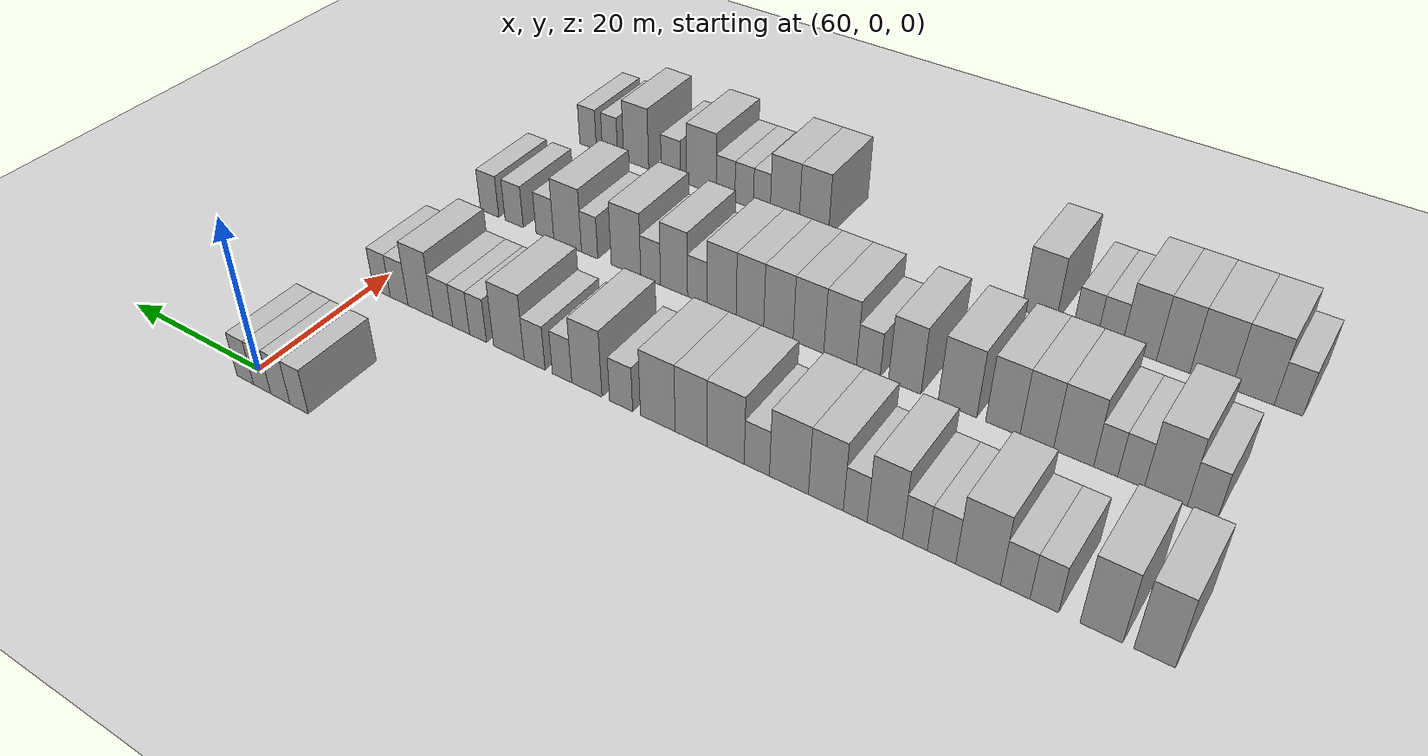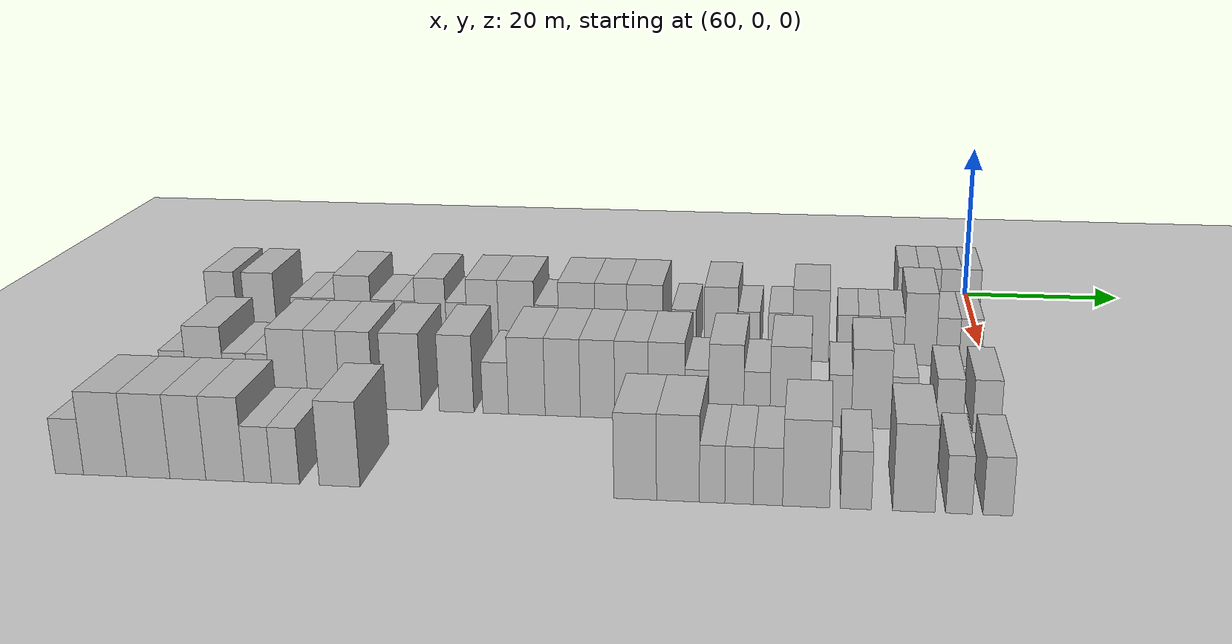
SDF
<sdf version="1.6">
 <world name="default">
  <include>
   <name>ground_plane_2</name>
   <uri>model://HANNAS_ground_plane</uri>
   <pose>100 0 0  0 0 0</pose>
  </include>
  <model name="building_412">
   <static>1</static>
   <pose>63.0000 -8.2367 0 0.000000 0.000000 0.000000</pose>
   <link name="link">
    <pose>0 0 3.00 0 0 0</pose>
    <collision name="collision"><geometry><box><size>10.0000 2.6798 6.0000</size></box></geometry></collision>
    <visual name="visual">
     <cast_shadows>0</cast_shadows>
     <geometry><box><size>10.0000 2.6798 6.0000</size></box></geometry>
     <material>
      <script>
       <uri>model://HANNAS_wall/materials/scripts</uri>
       <uri>model://HANNAS_wall/materials/textures</uri>
       <name>vrc/HANNAS_wall</name>
      </script>
     </material>
    </visual>
   </link>
  </model>
  <model name="building_413">
   <static>1</static>
   <pose>63.0000 -5.4580 0 0.000000 0.000000 0.000000</pose>
   <link name="link">
    <pose>0 0 3.00 0 0 0</pose>
    <collision name="collision"><geometry><box><size>10.0000 2.8775 6.0000</size></box></geometry></collision>
    <visual name="visual">
     <cast_shadows>0</cast_shadows>
     <geometry><box><size>10.0000 2.8775 6.0000</size></box></geometry>
     <material>
      <script>
       <uri>model://HANNAS_wall/materials/scripts</uri>
       <uri>model://HANNAS_wall/materials/textures</uri>
       <name>vrc/HANNAS_wall</name>
      </script>
     </material>
    </visual>
   </link>
  </model>
  <model name="building_414">
   <static>1</static>
   <pose>63.0000 -2.7112 0 0.000000 0.000000 0.000000</pose>
   <link name="link">
    <pose>0 0 3.00 0 0 0</pose>
    <collision name="collision"><geometry><box><size>10.0000 2.6161 6.0000</size></box></geometry></collision>
    <visual name="visual">
     <cast_shadows>0</cast_shadows>
     <geometry><box><size>10.0000 2.6161 6.0000</size></box></geometry>
     <material>
      <script>
       <uri>model://HANNAS_wall/materials/scripts</uri>
       <uri>model://HANNAS_wall/materials/textures</uri>
       <name>vrc/HANNAS_wall</name>
      </script>
     </material>
    </visual>
   </link>
  </model>
  <model name="building_415">
   <static>1</static>
   <pose>63.0000 -0.1219 0 0.000000 0.000000 0.000000</pose>
   <link name="link">
    <pose>0 0 3.00 0 0 0</pose>
    <collision name="collision"><geometry><box><size>10.0000 2.5626 6.0000</size></box></geometry></collision>
    <visual name="visual">
     <cast_shadows>0</cast_shadows>
     <geometry><box><size>10.0000 2.5626 6.0000</size></box></geometry>
     <material>
      <script>
       <uri>model://HANNAS_wall/materials/scripts</uri>
       <uri>model://HANNAS_wall/materials/textures</uri>
       <name>vrc/HANNAS_wall</name>
      </script>
     </material>
    </visual>
   </link>
  </model>
  <model name="building_560">
   <static>1</static>
   <pose>82.0000 -93.1378 0 0.000000 0.000000 0.000000</pose>
   <link name="link">
    <pose>0 0 4.50 0 0 0</pose>
    <collision name="collision"><geometry><box><size>10.0000 3.7165 9.0000</size></box></geometry></collision>
    <visual name="visual">
     <cast_shadows>0</cast_shadows>
     <geometry><box><size>10.0000 3.7165 9.0000</size></box></geometry>
     <material>
      <script>
       <uri>model://HANNAS_wall/materials/scripts</uri>
       <uri>model://HANNAS_wall/materials/textures</uri>
       <name>vrc/HANNAS_wall</name>
      </script>
     </material>
    </visual>
   </link>
  </model>
  <model name="building_561">
   <static>1</static>
   <pose>82.0000 -88.3044 0 0.000000 0.000000 0.000000</pose>
   <link name="link">
    <pose>0 0 4.50 0 0 0</pose>
    <collision name="collision"><geometry><box><size>10.0000 3.9504 9.0000</size></box></geometry></collision>
    <visual name="visual">
     <cast_shadows>0</cast_shadows>
     <geometry><box><size>10.0000 3.9504 9.0000</size></box></geometry>
     <material>
      <script>
       <uri>model://HANNAS_wall/materials/scripts</uri>
       <uri>model://HANNAS_wall/materials/textures</uri>
       <name>vrc/HANNAS_wall</name>
      </script>
     </material>
    </visual>
   </link>
  </model>
  <model name="building_562">
   <static>1</static>
   <pose>82.0000 -82.9565 0 0.000000 0.000000 0.000000</pose>
   <link name="link">
    <pose>0 0 3.00 0 0 0</pose>
    <collision name="collision"><geometry><box><size>10.0000 2.7454 6.0000</size></box></geometry></collision>
    <visual name="visual">
     <cast_shadows>0</cast_shadows>
     <geometry><box><size>10.0000 2.7454 6.0000</size></box></geometry>
     <material>
      <script>
       <uri>model://HANNAS_wall/materials/scripts</uri>
       <uri>model://HANNAS_wall/materials/textures</uri>
       <name>vrc/HANNAS_wall</name>
      </script>
     </material>
    </visual>
   </link>
  </model>
  <model name="building_563">
   <static>1</static>
   <pose>82.0000 -80.1450 0 0.000000 0.000000 0.000000</pose>
   <link name="link">
    <pose>0 0 3.00 0 0 0</pose>
    <collision name="collision"><geometry><box><size>10.0000 2.8777 6.0000</size></box></geometry></collision>
    <visual name="visual">
     <cast_shadows>0</cast_shadows>
     <geometry><box><size>10.0000 2.8777 6.0000</size></box></geometry>
     <material>
      <script>
       <uri>model://HANNAS_wall/materials/scripts</uri>
       <uri>model://HANNAS_wall/materials/textures</uri>
       <name>vrc/HANNAS_wall</name>
      </script>
     </material>
    </visual>
   </link>
  </model>
  <model name="building_564">
   <static>1</static>
   <pose>82.0000 -76.4679 0 0.000000 0.000000 0.000000</pose>
   <link name="link">
    <pose>0 0 4.50 0 0 0</pose>
    <collision name="collision"><geometry><box><size>10.0000 4.4765 9.0000</size></box></geometry></collision>
    <visual name="visual">
     <cast_shadows>0</cast_shadows>
     <geometry><box><size>10.0000 4.4765 9.0000</size></box></geometry>
     <material>
      <script>
       <uri>model://HANNAS_wall/materials/scripts</uri>
       <uri>model://HANNAS_wall/materials/textures</uri>
       <name>vrc/HANNAS_wall</name>
      </script>
     </material>
    </visual>
   </link>
  </model>
  <model name="building_565">
   <static>1</static>
   <pose>82.0000 -72.7748 0 0.000000 0.000000 0.000000</pose>
   <link name="link">
    <pose>0 0 3.00 0 0 0</pose>
    <collision name="collision"><geometry><box><size>10.0000 2.9097 6.0000</size></box></geometry></collision>
    <visual name="visual">
     <cast_shadows>0</cast_shadows>
     <geometry><box><size>10.0000 2.9097 6.0000</size></box></geometry>
     <material>
      <script>
       <uri>model://HANNAS_wall/materials/scripts</uri>
       <uri>model://HANNAS_wall/materials/textures</uri>
       <name>vrc/HANNAS_wall</name>
      </script>
     </material>
    </visual>
   </link>
  </model>
  <model name="building_566">
   <static>1</static>
   <pose>82.0000 -70.0267 0 0.000000 0.000000 0.000000</pose>
   <link name="link">
    <pose>0 0 3.00 0 0 0</pose>
    <collision name="collision"><geometry><box><size>10.0000 2.5865 6.0000</size></box></geometry></collision>
    <visual name="visual">
     <cast_shadows>0</cast_shadows>
     <geometry><box><size>10.0000 2.5865 6.0000</size></box></geometry>
     <material>
      <script>
       <uri>model://HANNAS_wall/materials/scripts</uri>
       <uri>model://HANNAS_wall/materials/textures</uri>
       <name>vrc/HANNAS_wall</name>
      </script>
     </material>
    </visual>
   </link>
  </model>
  <model name="building_567">
   <static>1</static>
   <pose>82.0000 -66.8408 0 0.000000 0.000000 0.000000</pose>
   <link name="link">
    <pose>0 0 4.50 0 0 0</pose>
    <collision name="collision"><geometry><box><size>10.0000 3.7851 9.0000</size></box></geometry></collision>
    <visual name="visual">
     <cast_shadows>0</cast_shadows>
     <geometry><box><size>10.0000 3.7851 9.0000</size></box></geometry>
     <material>
      <script>
       <uri>model://HANNAS_wall/materials/scripts</uri>
       <uri>model://HANNAS_wall/materials/textures</uri>
       <name>vrc/HANNAS_wall</name>
      </script>
     </material>
    </visual>
   </link>
  </model>
  <model name="building_568">
   <static>1</static>
   <pose>82.0000 -63.6502 0 0.000000 0.000000 0.000000</pose>
   <link name="link">
    <pose>0 0 3.00 0 0 0</pose>
    <collision name="collision"><geometry><box><size>10.0000 2.5962 6.0000</size></box></geometry></collision>
    <visual name="visual">
     <cast_shadows>0</cast_shadows>
     <geometry><box><size>10.0000 2.5962 6.0000</size></box></geometry>
     <material>
      <script>
       <uri>model://HANNAS_wall/materials/scripts</uri>
       <uri>model://HANNAS_wall/materials/textures</uri>
       <name>vrc/HANNAS_wall</name>
      </script>
     </material>
    </visual>
   </link>
  </model>
  <model name="building_569">
   <static>1</static>
   <pose>82.0000 -60.4070 0 0.000000 0.000000 0.000000</pose>
   <link name="link">
    <pose>0 0 4.50 0 0 0</pose>
    <collision name="collision"><geometry><box><size>10.0000 3.8902 9.0000</size></box></geometry></collision>
    <visual name="visual">
     <cast_shadows>0</cast_shadows>
     <geometry><box><size>10.0000 3.8902 9.0000</size></box></geometry>
     <material>
      <script>
       <uri>model://HANNAS_wall/materials/scripts</uri>
       <uri>model://HANNAS_wall/materials/textures</uri>
       <name>vrc/HANNAS_wall</name>
      </script>
     </material>
    </visual>
   </link>
  </model>
  <model name="building_570">
   <static>1</static>
   <pose>82.0000 -56.2359 0 0.000000 0.000000 0.000000</pose>
   <link name="link">
    <pose>0 0 4.50 0 0 0</pose>
    <collision name="collision"><geometry><box><size>10.0000 4.4520 9.0000</size></box></geometry></collision>
    <visual name="visual">
     <cast_shadows>0</cast_shadows>
     <geometry><box><size>10.0000 4.4520 9.0000</size></box></geometry>
     <material>
      <script>
       <uri>model://HANNAS_wall/materials/scripts</uri>
       <uri>model://HANNAS_wall/materials/textures</uri>
       <name>vrc/HANNAS_wall</name>
      </script>
     </material>
    </visual>
   </link>
  </model>
  <model name="building_571">
   <static>1</static>
   <pose>82.0000 -52.5347 0 0.000000 0.000000 0.000000</pose>
   <link name="link">
    <pose>0 0 3.00 0 0 0</pose>
    <collision name="collision"><geometry><box><size>10.0000 2.9504 6.0000</size></box></geometry></collision>
    <visual name="visual">
     <cast_shadows>0</cast_shadows>
     <geometry><box><size>10.0000 2.9504 6.0000</size></box></geometry>
     <material>
      <script>
       <uri>model://HANNAS_wall/materials/scripts</uri>
       <uri>model://HANNAS_wall/materials/textures</uri>
       <name>vrc/HANNAS_wall</name>
      </script>
     </material>
    </visual>
   </link>
  </model>
  <model name="building_572">
   <static>1</static>
   <pose>82.0000 -48.8344 0 0.000000 0.000000 0.000000</pose>
   <link name="link">
    <pose>0 0 4.50 0 0 0</pose>
    <collision name="collision"><geometry><box><size>10.0000 4.4501 9.0000</size></box></geometry></collision>
    <visual name="visual">
     <cast_shadows>0</cast_shadows>
     <geometry><box><size>10.0000 4.4501 9.0000</size></box></geometry>
     <material>
      <script>
       <uri>model://HANNAS_wall/materials/scripts</uri>
       <uri>model://HANNAS_wall/materials/textures</uri>
       <name>vrc/HANNAS_wall</name>
      </script>
     </material>
    </visual>
   </link>
  </model>
  <model name="building_573">
   <static>1</static>
   <pose>82.0000 -44.6592 0 0.000000 0.000000 0.000000</pose>
   <link name="link">
    <pose>0 0 4.50 0 0 0</pose>
    <collision name="collision"><geometry><box><size>10.0000 3.9004 9.0000</size></box></geometry></collision>
    <visual name="visual">
     <cast_shadows>0</cast_shadows>
     <geometry><box><size>10.0000 3.9004 9.0000</size></box></geometry>
     <material>
      <script>
       <uri>model://HANNAS_wall/materials/scripts</uri>
       <uri>model://HANNAS_wall/materials/textures</uri>
       <name>vrc/HANNAS_wall</name>
      </script>
     </material>
    </visual>
   </link>
  </model>
  <model name="building_574">
   <static>1</static>
   <pose>82.0000 -40.5272 0 0.000000 0.000000 0.000000</pose>
   <link name="link">
    <pose>0 0 4.50 0 0 0</pose>
    <collision name="collision"><geometry><box><size>10.0000 4.3636 9.0000</size></box></geometry></collision>
    <visual name="visual">
     <cast_shadows>0</cast_shadows>
     <geometry><box><size>10.0000 4.3636 9.0000</size></box></geometry>
     <material>
      <script>
       <uri>model://HANNAS_wall/materials/scripts</uri>
       <uri>model://HANNAS_wall/materials/textures</uri>
       <name>vrc/HANNAS_wall</name>
      </script>
     </material>
    </visual>
   </link>
  </model>
  <model name="building_575">
   <static>1</static>
   <pose>82.0000 -35.8526 0 0.000000 0.000000 0.000000</pose>
   <link name="link">
    <pose>0 0 3.00 0 0 0</pose>
    <collision name="collision"><geometry><box><size>10.0000 2.9856 6.0000</size></box></geometry></collision>
    <visual name="visual">
     <cast_shadows>0</cast_shadows>
     <geometry><box><size>10.0000 2.9856 6.0000</size></box></geometry>
     <material>
      <script>
       <uri>model://HANNAS_wall/materials/scripts</uri>
       <uri>model://HANNAS_wall/materials/textures</uri>
       <name>vrc/HANNAS_wall</name>
      </script>
     </material>
    </visual>
   </link>
  </model>
  <model name="building_576">
   <static>1</static>
   <pose>82.0000 -31.3564 0 0.000000 0.000000 0.000000</pose>
   <link name="link">
    <pose>0 0 4.50 0 0 0</pose>
    <collision name="collision"><geometry><box><size>10.0000 4.0068 9.0000</size></box></geometry></collision>
    <visual name="visual">
     <cast_shadows>0</cast_shadows>
     <geometry><box><size>10.0000 4.0068 9.0000</size></box></geometry>
     <material>
      <script>
       <uri>model://HANNAS_wall/materials/scripts</uri>
       <uri>model://HANNAS_wall/materials/textures</uri>
       <name>vrc/HANNAS_wall</name>
      </script>
     </material>
    </visual>
   </link>
  </model>
  <model name="building_577">
   <static>1</static>
   <pose>82.0000 -28.0346 0 0.000000 0.000000 0.000000</pose>
   <link name="link">
    <pose>0 0 3.00 0 0 0</pose>
    <collision name="collision"><geometry><box><size>10.0000 2.6367 6.0000</size></box></geometry></collision>
    <visual name="visual">
     <cast_shadows>0</cast_shadows>
     <geometry><box><size>10.0000 2.6367 6.0000</size></box></geometry>
     <material>
      <script>
       <uri>model://HANNAS_wall/materials/scripts</uri>
       <uri>model://HANNAS_wall/materials/textures</uri>
       <name>vrc/HANNAS_wall</name>
      </script>
     </material>
    </visual>
   </link>
  </model>
  <model name="building_578">
   <static>1</static>
   <pose>82.0000 -24.2672 0 0.000000 0.000000 0.000000</pose>
   <link name="link">
    <pose>0 0 3.00 0 0 0</pose>
    <collision name="collision"><geometry><box><size>10.0000 2.8980 6.0000</size></box></geometry></collision>
    <visual name="visual">
     <cast_shadows>0</cast_shadows>
     <geometry><box><size>10.0000 2.8980 6.0000</size></box></geometry>
     <material>
      <script>
       <uri>model://HANNAS_wall/materials/scripts</uri>
       <uri>model://HANNAS_wall/materials/textures</uri>
       <name>vrc/HANNAS_wall</name>
      </script>
     </material>
    </visual>
   </link>
  </model>
  <model name="building_579">
   <static>1</static>
   <pose>82.0000 -20.6500 0 0.000000 0.000000 0.000000</pose>
   <link name="link">
    <pose>0 0 4.50 0 0 0</pose>
    <collision name="collision"><geometry><box><size>10.0000 4.3365 9.0000</size></box></geometry></collision>
    <visual name="visual">
     <cast_shadows>0</cast_shadows>
     <geometry><box><size>10.0000 4.3365 9.0000</size></box></geometry>
     <material>
      <script>
       <uri>model://HANNAS_wall/materials/scripts</uri>
       <uri>model://HANNAS_wall/materials/textures</uri>
       <name>vrc/HANNAS_wall</name>
      </script>
     </material>
    </visual>
   </link>
  </model>
  <model name="building_580">
   <static>1</static>
   <pose>82.0000 -16.2533 0 0.000000 0.000000 0.000000</pose>
   <link name="link">
    <pose>0 0 3.00 0 0 0</pose>
    <collision name="collision"><geometry><box><size>10.0000 2.4568 6.0000</size></box></geometry></collision>
    <visual name="visual">
     <cast_shadows>0</cast_shadows>
     <geometry><box><size>10.0000 2.4568 6.0000</size></box></geometry>
     <material>
      <script>
       <uri>model://HANNAS_wall/materials/scripts</uri>
       <uri>model://HANNAS_wall/materials/textures</uri>
       <name>vrc/HANNAS_wall</name>
      </script>
     </material>
    </visual>
   </link>
  </model>
  <model name="building_581">
   <static>1</static>
   <pose>82.0000 -13.7744 0 0.000000 0.000000 0.000000</pose>
   <link name="link">
    <pose>0 0 3.00 0 0 0</pose>
    <collision name="collision"><geometry><box><size>10.0000 2.5010 6.0000</size></box></geometry></collision>
    <visual name="visual">
     <cast_shadows>0</cast_shadows>
     <geometry><box><size>10.0000 2.5010 6.0000</size></box></geometry>
     <material>
      <script>
       <uri>model://HANNAS_wall/materials/scripts</uri>
       <uri>model://HANNAS_wall/materials/textures</uri>
       <name>vrc/HANNAS_wall</name>
      </script>
     </material>
    </visual>
   </link>
  </model>
  <model name="building_582">
   <static>1</static>
   <pose>82.0000 -11.0489 0 0.000000 0.000000 0.000000</pose>
   <link name="link">
    <pose>0 0 3.00 0 0 0</pose>
    <collision name="collision"><geometry><box><size>10.0000 2.9499 6.0000</size></box></geometry></collision>
    <visual name="visual">
     <cast_shadows>0</cast_shadows>
     <geometry><box><size>10.0000 2.9499 6.0000</size></box></geometry>
     <material>
      <script>
       <uri>model://HANNAS_wall/materials/scripts</uri>
       <uri>model://HANNAS_wall/materials/textures</uri>
       <name>vrc/HANNAS_wall</name>
      </script>
     </material>
    </visual>
   </link>
  </model>
  <model name="building_583">
   <static>1</static>
   <pose>82.0000 -7.6797 0 0.000000 0.000000 0.000000</pose>
   <link name="link">
    <pose>0 0 4.50 0 0 0</pose>
    <collision name="collision"><geometry><box><size>10.0000 3.7885 9.0000</size></box></geometry></collision>
    <visual name="visual">
     <cast_shadows>0</cast_shadows>
     <geometry><box><size>10.0000 3.7885 9.0000</size></box></geometry>
     <material>
      <script>
       <uri>model://HANNAS_wall/materials/scripts</uri>
       <uri>model://HANNAS_wall/materials/textures</uri>
       <name>vrc/HANNAS_wall</name>
      </script>
     </material>
    </visual>
   </link>
  </model>
  <model name="building_584">
   <static>1</static>
   <pose>82.0000 -4.4177 0 0.000000 0.000000 0.000000</pose>
   <link name="link">
    <pose>0 0 3.00 0 0 0</pose>
    <collision name="collision"><geometry><box><size>10.0000 2.7355 6.0000</size></box></geometry></collision>
    <visual name="visual">
     <cast_shadows>0</cast_shadows>
     <geometry><box><size>10.0000 2.7355 6.0000</size></box></geometry>
     <material>
      <script>
       <uri>model://HANNAS_wall/materials/scripts</uri>
       <uri>model://HANNAS_wall/materials/textures</uri>
       <name>vrc/HANNAS_wall</name>
      </script>
     </material>
    </visual>
   </link>
  </model>
  <model name="building_585">
   <static>1</static>
   <pose>82.0000 -1.7297 0 0.000000 0.000000 0.000000</pose>
   <link name="link">
    <pose>0 0 3.00 0 0 0</pose>
    <collision name="collision"><geometry><box><size>10.0000 2.6406 6.0000</size></box></geometry></collision>
    <visual name="visual">
     <cast_shadows>0</cast_shadows>
     <geometry><box><size>10.0000 2.6406 6.0000</size></box></geometry>
     <material>
      <script>
       <uri>model://HANNAS_wall/materials/scripts</uri>
       <uri>model://HANNAS_wall/materials/textures</uri>
       <name>vrc/HANNAS_wall</name>
      </script>
     </material>
    </visual>
   </link>
  </model>
  <model name="building_735">
   <static>1</static>
   <pose>101.0000 -91.1388 0 0.000000 0.000000 0.000000</pose>
   <link name="link">
    <pose>0 0 3.00 0 0 0</pose>
    <collision name="collision"><geometry><box><size>10.0000 2.9522 6.0000</size></box></geometry></collision>
    <visual name="visual">
     <cast_shadows>0</cast_shadows>
     <geometry><box><size>10.0000 2.9522 6.0000</size></box></geometry>
     <material>
      <script>
       <uri>model://HANNAS_wall/materials/scripts</uri>
       <uri>model://HANNAS_wall/materials/textures</uri>
       <name>vrc/HANNAS_wall</name>
      </script>
     </material>
    </visual>
   </link>
  </model>
  <model name="building_736">
   <static>1</static>
   <pose>101.0000 -87.5101 0 0.000000 0.000000 0.000000</pose>
   <link name="link">
    <pose>0 0 4.50 0 0 0</pose>
    <collision name="collision"><geometry><box><size>10.0000 4.3053 9.0000</size></box></geometry></collision>
    <visual name="visual">
     <cast_shadows>0</cast_shadows>
     <geometry><box><size>10.0000 4.3053 9.0000</size></box></geometry>
     <material>
      <script>
       <uri>model://HANNAS_wall/materials/scripts</uri>
       <uri>model://HANNAS_wall/materials/textures</uri>
       <name>vrc/HANNAS_wall</name>
      </script>
     </material>
    </visual>
   </link>
  </model>
  <model name="building_737">
   <static>1</static>
   <pose>101.0000 -84.0035 0 0.000000 0.000000 0.000000</pose>
   <link name="link">
    <pose>0 0 3.00 0 0 0</pose>
    <collision name="collision"><geometry><box><size>10.0000 2.7078 6.0000</size></box></geometry></collision>
    <visual name="visual">
     <cast_shadows>0</cast_shadows>
     <geometry><box><size>10.0000 2.7078 6.0000</size></box></geometry>
     <material>
      <script>
       <uri>model://HANNAS_wall/materials/scripts</uri>
       <uri>model://HANNAS_wall/materials/textures</uri>
       <name>vrc/HANNAS_wall</name>
      </script>
     </material>
    </visual>
   </link>
  </model>
  <model name="building_738">
   <static>1</static>
   <pose>101.0000 -81.4059 0 0.000000 0.000000 0.000000</pose>
   <link name="link">
    <pose>0 0 3.00 0 0 0</pose>
    <collision name="collision"><geometry><box><size>10.0000 2.4875 6.0000</size></box></geometry></collision>
    <visual name="visual">
     <cast_shadows>0</cast_shadows>
     <geometry><box><size>10.0000 2.4875 6.0000</size></box></geometry>
     <material>
      <script>
       <uri>model://HANNAS_wall/materials/scripts</uri>
       <uri>model://HANNAS_wall/materials/textures</uri>
       <name>vrc/HANNAS_wall</name>
      </script>
     </material>
    </visual>
   </link>
  </model>
  <model name="building_739">
   <static>1</static>
   <pose>101.0000 -78.0260 0 0.000000 0.000000 0.000000</pose>
   <link name="link">
    <pose>0 0 4.50 0 0 0</pose>
    <collision name="collision"><geometry><box><size>10.0000 4.2721 9.0000</size></box></geometry></collision>
    <visual name="visual">
     <cast_shadows>0</cast_shadows>
     <geometry><box><size>10.0000 4.2721 9.0000</size></box></geometry>
     <material>
      <script>
       <uri>model://HANNAS_wall/materials/scripts</uri>
       <uri>model://HANNAS_wall/materials/textures</uri>
       <name>vrc/HANNAS_wall</name>
      </script>
     </material>
    </visual>
   </link>
  </model>
  <model name="building_740">
   <static>1</static>
   <pose>101.0000 -74.0801 0 0.000000 0.000000 0.000000</pose>
   <link name="link">
    <pose>0 0 4.50 0 0 0</pose>
    <collision name="collision"><geometry><box><size>10.0000 3.6197 9.0000</size></box></geometry></collision>
    <visual name="visual">
     <cast_shadows>0</cast_shadows>
     <geometry><box><size>10.0000 3.6197 9.0000</size></box></geometry>
     <material>
      <script>
       <uri>model://HANNAS_wall/materials/scripts</uri>
       <uri>model://HANNAS_wall/materials/textures</uri>
       <name>vrc/HANNAS_wall</name>
      </script>
     </material>
    </visual>
   </link>
  </model>
  <model name="building_741">
   <static>1</static>
   <pose>101.0000 -70.3758 0 0.000000 0.000000 0.000000</pose>
   <link name="link">
    <pose>0 0 4.50 0 0 0</pose>
    <collision name="collision"><geometry><box><size>10.0000 3.7889 9.0000</size></box></geometry></collision>
    <visual name="visual">
     <cast_shadows>0</cast_shadows>
     <geometry><box><size>10.0000 3.7889 9.0000</size></box></geometry>
     <material>
      <script>
       <uri>model://HANNAS_wall/materials/scripts</uri>
       <uri>model://HANNAS_wall/materials/textures</uri>
       <name>vrc/HANNAS_wall</name>
      </script>
     </material>
    </visual>
   </link>
  </model>
  <model name="building_742">
   <static>1</static>
   <pose>101.0000 -65.2752 0 0.000000 0.000000 0.000000</pose>
   <link name="link">
    <pose>0 0 4.50 0 0 0</pose>
    <collision name="collision"><geometry><box><size>10.0000 4.4124 9.0000</size></box></geometry></collision>
    <visual name="visual">
     <cast_shadows>0</cast_shadows>
     <geometry><box><size>10.0000 4.4124 9.0000</size></box></geometry>
     <material>
      <script>
       <uri>model://HANNAS_wall/materials/scripts</uri>
       <uri>model://HANNAS_wall/materials/textures</uri>
       <name>vrc/HANNAS_wall</name>
      </script>
     </material>
    </visual>
   </link>
  </model>
  <model name="building_743">
   <static>1</static>
   <pose>101.0000 -59.1410 0 0.000000 0.000000 0.000000</pose>
   <link name="link">
    <pose>0 0 4.50 0 0 0</pose>
    <collision name="collision"><geometry><box><size>10.0000 3.8560 9.0000</size></box></geometry></collision>
    <visual name="visual">
     <cast_shadows>0</cast_shadows>
     <geometry><box><size>10.0000 3.8560 9.0000</size></box></geometry>
     <material>
      <script>
       <uri>model://HANNAS_wall/materials/scripts</uri>
       <uri>model://HANNAS_wall/materials/textures</uri>
       <name>vrc/HANNAS_wall</name>
      </script>
     </material>
    </visual>
   </link>
  </model>
  <model name="building_744">
   <static>1</static>
   <pose>101.0000 -54.7755 0 0.000000 0.000000 0.000000</pose>
   <link name="link">
    <pose>0 0 3.00 0 0 0</pose>
    <collision name="collision"><geometry><box><size>10.0000 2.8749 6.0000</size></box></geometry></collision>
    <visual name="visual">
     <cast_shadows>0</cast_shadows>
     <geometry><box><size>10.0000 2.8749 6.0000</size></box></geometry>
     <material>
      <script>
       <uri>model://HANNAS_wall/materials/scripts</uri>
       <uri>model://HANNAS_wall/materials/textures</uri>
       <name>vrc/HANNAS_wall</name>
      </script>
     </material>
    </visual>
   </link>
  </model>
  <model name="building_745">
   <static>1</static>
   <pose>101.0000 -51.3033 0 0.000000 0.000000 0.000000</pose>
   <link name="link">
    <pose>0 0 4.50 0 0 0</pose>
    <collision name="collision"><geometry><box><size>10.0000 4.0695 9.0000</size></box></geometry></collision>
    <visual name="visual">
     <cast_shadows>0</cast_shadows>
     <geometry><box><size>10.0000 4.0695 9.0000</size></box></geometry>
     <material>
      <script>
       <uri>model://HANNAS_wall/materials/scripts</uri>
       <uri>model://HANNAS_wall/materials/textures</uri>
       <name>vrc/HANNAS_wall</name>
      </script>
     </material>
    </visual>
   </link>
  </model>
  <model name="building_746">
   <static>1</static>
   <pose>101.0000 -47.3239 0 0.000000 0.000000 0.000000</pose>
   <link name="link">
    <pose>0 0 4.50 0 0 0</pose>
    <collision name="collision"><geometry><box><size>10.0000 3.8893 9.0000</size></box></geometry></collision>
    <visual name="visual">
     <cast_shadows>0</cast_shadows>
     <geometry><box><size>10.0000 3.8893 9.0000</size></box></geometry>
     <material>
      <script>
       <uri>model://HANNAS_wall/materials/scripts</uri>
       <uri>model://HANNAS_wall/materials/textures</uri>
       <name>vrc/HANNAS_wall</name>
      </script>
     </material>
    </visual>
   </link>
  </model>
  <model name="building_747">
   <static>1</static>
   <pose>101.0000 -43.4736 0 0.000000 0.000000 0.000000</pose>
   <link name="link">
    <pose>0 0 4.50 0 0 0</pose>
    <collision name="collision"><geometry><box><size>10.0000 3.8114 9.0000</size></box></geometry></collision>
    <visual name="visual">
     <cast_shadows>0</cast_shadows>
     <geometry><box><size>10.0000 3.8114 9.0000</size></box></geometry>
     <material>
      <script>
       <uri>model://HANNAS_wall/materials/scripts</uri>
       <uri>model://HANNAS_wall/materials/textures</uri>
       <name>vrc/HANNAS_wall</name>
      </script>
     </material>
    </visual>
   </link>
  </model>
  <model name="building_748">
   <static>1</static>
   <pose>101.0000 -39.7420 0 0.000000 0.000000 0.000000</pose>
   <link name="link">
    <pose>0 0 4.50 0 0 0</pose>
    <collision name="collision"><geometry><box><size>10.0000 3.6517 9.0000</size></box></geometry></collision>
    <visual name="visual">
     <cast_shadows>0</cast_shadows>
     <geometry><box><size>10.0000 3.6517 9.0000</size></box></geometry>
     <material>
      <script>
       <uri>model://HANNAS_wall/materials/scripts</uri>
       <uri>model://HANNAS_wall/materials/textures</uri>
       <name>vrc/HANNAS_wall</name>
      </script>
     </material>
    </visual>
   </link>
  </model>
  <model name="building_749">
   <static>1</static>
   <pose>101.0000 -35.9309 0 0.000000 0.000000 0.000000</pose>
   <link name="link">
    <pose>0 0 4.50 0 0 0</pose>
    <collision name="collision"><geometry><box><size>10.0000 3.9706 9.0000</size></box></geometry></collision>
    <visual name="visual">
     <cast_shadows>0</cast_shadows>
     <geometry><box><size>10.0000 3.9706 9.0000</size></box></geometry>
     <material>
      <script>
       <uri>model://HANNAS_wall/materials/scripts</uri>
       <uri>model://HANNAS_wall/materials/textures</uri>
       <name>vrc/HANNAS_wall</name>
      </script>
     </material>
    </visual>
   </link>
  </model>
  <model name="building_750">
   <static>1</static>
   <pose>101.0000 -32.6346 0 0.000000 0.000000 0.000000</pose>
   <link name="link">
    <pose>0 0 3.00 0 0 0</pose>
    <collision name="collision"><geometry><box><size>10.0000 2.6220 6.0000</size></box></geometry></collision>
    <visual name="visual">
     <cast_shadows>0</cast_shadows>
     <geometry><box><size>10.0000 2.6220 6.0000</size></box></geometry>
     <material>
      <script>
       <uri>model://HANNAS_wall/materials/scripts</uri>
       <uri>model://HANNAS_wall/materials/textures</uri>
       <name>vrc/HANNAS_wall</name>
      </script>
     </material>
    </visual>
   </link>
  </model>
  <model name="building_751">
   <static>1</static>
   <pose>101.0000 -29.4333 0 0.000000 0.000000 0.000000</pose>
   <link name="link">
    <pose>0 0 4.50 0 0 0</pose>
    <collision name="collision"><geometry><box><size>10.0000 3.7805 9.0000</size></box></geometry></collision>
    <visual name="visual">
     <cast_shadows>0</cast_shadows>
     <geometry><box><size>10.0000 3.7805 9.0000</size></box></geometry>
     <material>
      <script>
       <uri>model://HANNAS_wall/materials/scripts</uri>
       <uri>model://HANNAS_wall/materials/textures</uri>
       <name>vrc/HANNAS_wall</name>
      </script>
     </material>
    </visual>
   </link>
  </model>
  <model name="building_752">
   <static>1</static>
   <pose>101.0000 -26.1366 0 0.000000 0.000000 0.000000</pose>
   <link name="link">
    <pose>0 0 3.00 0 0 0</pose>
    <collision name="collision"><geometry><box><size>10.0000 2.8130 6.0000</size></box></geometry></collision>
    <visual name="visual">
     <cast_shadows>0</cast_shadows>
     <geometry><box><size>10.0000 2.8130 6.0000</size></box></geometry>
     <material>
      <script>
       <uri>model://HANNAS_wall/materials/scripts</uri>
       <uri>model://HANNAS_wall/materials/textures</uri>
       <name>vrc/HANNAS_wall</name>
      </script>
     </material>
    </visual>
   </link>
  </model>
  <model name="building_753">
   <static>1</static>
   <pose>101.0000 -22.5855 0 0.000000 0.000000 0.000000</pose>
   <link name="link">
    <pose>0 0 4.50 0 0 0</pose>
    <collision name="collision"><geometry><box><size>10.0000 4.2891 9.0000</size></box></geometry></collision>
    <visual name="visual">
     <cast_shadows>0</cast_shadows>
     <geometry><box><size>10.0000 4.2891 9.0000</size></box></geometry>
     <material>
      <script>
       <uri>model://HANNAS_wall/materials/scripts</uri>
       <uri>model://HANNAS_wall/materials/textures</uri>
       <name>vrc/HANNAS_wall</name>
      </script>
     </material>
    </visual>
   </link>
  </model>
  <model name="building_754">
   <static>1</static>
   <pose>101.0000 -17.2259 0 0.000000 0.000000 0.000000</pose>
   <link name="link">
    <pose>0 0 3.00 0 0 0</pose>
    <collision name="collision"><geometry><box><size>10.0000 2.4301 6.0000</size></box></geometry></collision>
    <visual name="visual">
     <cast_shadows>0</cast_shadows>
     <geometry><box><size>10.0000 2.4301 6.0000</size></box></geometry>
     <material>
      <script>
       <uri>model://HANNAS_wall/materials/scripts</uri>
       <uri>model://HANNAS_wall/materials/textures</uri>
       <name>vrc/HANNAS_wall</name>
      </script>
     </material>
    </visual>
   </link>
  </model>
  <model name="building_755">
   <static>1</static>
   <pose>101.0000 -13.9082 0 0.000000 0.000000 0.000000</pose>
   <link name="link">
    <pose>0 0 4.50 0 0 0</pose>
    <collision name="collision"><geometry><box><size>10.0000 4.2054 9.0000</size></box></geometry></collision>
    <visual name="visual">
     <cast_shadows>0</cast_shadows>
     <geometry><box><size>10.0000 4.2054 9.0000</size></box></geometry>
     <material>
      <script>
       <uri>model://HANNAS_wall/materials/scripts</uri>
       <uri>model://HANNAS_wall/materials/textures</uri>
       <name>vrc/HANNAS_wall</name>
      </script>
     </material>
    </visual>
   </link>
  </model>
  <model name="building_756">
   <static>1</static>
   <pose>101.0000 -10.4266 0 0.000000 0.000000 0.000000</pose>
   <link name="link">
    <pose>0 0 3.00 0 0 0</pose>
    <collision name="collision"><geometry><box><size>10.0000 2.7578 6.0000</size></box></geometry></collision>
    <visual name="visual">
     <cast_shadows>0</cast_shadows>
     <geometry><box><size>10.0000 2.7578 6.0000</size></box></geometry>
     <material>
      <script>
       <uri>model://HANNAS_wall/materials/scripts</uri>
       <uri>model://HANNAS_wall/materials/textures</uri>
       <name>vrc/HANNAS_wall</name>
      </script>
     </material>
    </visual>
   </link>
  </model>
  <model name="building_757">
   <static>1</static>
   <pose>101.0000 -5.5961 0 0.000000 0.000000 0.000000</pose>
   <link name="link">
    <pose>0 0 3.00 0 0 0</pose>
    <collision name="collision"><geometry><box><size>10.0000 2.9031 6.0000</size></box></geometry></collision>
    <visual name="visual">
     <cast_shadows>0</cast_shadows>
     <geometry><box><size>10.0000 2.9031 6.0000</size></box></geometry>
     <material>
      <script>
       <uri>model://HANNAS_wall/materials/scripts</uri>
       <uri>model://HANNAS_wall/materials/textures</uri>
       <name>vrc/HANNAS_wall</name>
      </script>
     </material>
    </visual>
   </link>
  </model>
  <model name="building_758">
   <static>1</static>
   <pose>101.0000 -1.6650 0 0.000000 0.000000 0.000000</pose>
   <link name="link">
    <pose>0 0 3.00 0 0 0</pose>
    <collision name="collision"><geometry><box><size>10.0000 2.9592 6.0000</size></box></geometry></collision>
    <visual name="visual">
     <cast_shadows>0</cast_shadows>
     <geometry><box><size>10.0000 2.9592 6.0000</size></box></geometry>
     <material>
      <script>
       <uri>model://HANNAS_wall/materials/scripts</uri>
       <uri>model://HANNAS_wall/materials/textures</uri>
       <name>vrc/HANNAS_wall</name>
      </script>
     </material>
    </visual>
   </link>
  </model>
  <model name="building_903">
   <static>1</static>
   <pose>120.0000 -93.9978 0 0.000000 0.000000 0.000000</pose>
   <link name="link">
    <pose>0 0 3.00 0 0 0</pose>
    <collision name="collision"><geometry><box><size>10.0000 2.9646 6.0000</size></box></geometry></collision>
    <visual name="visual">
     <cast_shadows>0</cast_shadows>
     <geometry><box><size>10.0000 2.9646 6.0000</size></box></geometry>
     <material>
      <script>
       <uri>model://HANNAS_wall/materials/scripts</uri>
       <uri>model://HANNAS_wall/materials/textures</uri>
       <name>vrc/HANNAS_wall</name>
      </script>
     </material>
    </visual>
   </link>
  </model>
  <model name="building_904">
   <static>1</static>
   <pose>120.0000 -90.2686 0 0.000000 0.000000 0.000000</pose>
   <link name="link">
    <pose>0 0 4.50 0 0 0</pose>
    <collision name="collision"><geometry><box><size>10.0000 4.4939 9.0000</size></box></geometry></collision>
    <visual name="visual">
     <cast_shadows>0</cast_shadows>
     <geometry><box><size>10.0000 4.4939 9.0000</size></box></geometry>
     <material>
      <script>
       <uri>model://HANNAS_wall/materials/scripts</uri>
       <uri>model://HANNAS_wall/materials/textures</uri>
       <name>vrc/HANNAS_wall</name>
      </script>
     </material>
    </visual>
   </link>
  </model>
  <model name="building_905">
   <static>1</static>
   <pose>120.0000 -85.7876 0 0.000000 0.000000 0.000000</pose>
   <link name="link">
    <pose>0 0 4.50 0 0 0</pose>
    <collision name="collision"><geometry><box><size>10.0000 4.4682 9.0000</size></box></geometry></collision>
    <visual name="visual">
     <cast_shadows>0</cast_shadows>
     <geometry><box><size>10.0000 4.4682 9.0000</size></box></geometry>
     <material>
      <script>
       <uri>model://HANNAS_wall/materials/scripts</uri>
       <uri>model://HANNAS_wall/materials/textures</uri>
       <name>vrc/HANNAS_wall</name>
      </script>
     </material>
    </visual>
   </link>
  </model>
  <model name="building_906">
   <static>1</static>
   <pose>120.0000 -81.7066 0 0.000000 0.000000 0.000000</pose>
   <link name="link">
    <pose>0 0 4.50 0 0 0</pose>
    <collision name="collision"><geometry><box><size>10.0000 3.6937 9.0000</size></box></geometry></collision>
    <visual name="visual">
     <cast_shadows>0</cast_shadows>
     <geometry><box><size>10.0000 3.6937 9.0000</size></box></geometry>
     <material>
      <script>
       <uri>model://HANNAS_wall/materials/scripts</uri>
       <uri>model://HANNAS_wall/materials/textures</uri>
       <name>vrc/HANNAS_wall</name>
      </script>
     </material>
    </visual>
   </link>
  </model>
  <model name="building_907">
   <static>1</static>
   <pose>120.0000 -77.8976 0 0.000000 0.000000 0.000000</pose>
   <link name="link">
    <pose>0 0 4.50 0 0 0</pose>
    <collision name="collision"><geometry><box><size>10.0000 3.9243 9.0000</size></box></geometry></collision>
    <visual name="visual">
     <cast_shadows>0</cast_shadows>
     <geometry><box><size>10.0000 3.9243 9.0000</size></box></geometry>
     <material>
      <script>
       <uri>model://HANNAS_wall/materials/scripts</uri>
       <uri>model://HANNAS_wall/materials/textures</uri>
       <name>vrc/HANNAS_wall</name>
      </script>
     </material>
    </visual>
   </link>
  </model>
  <model name="building_908">
   <static>1</static>
   <pose>120.0000 -74.5383 0 0.000000 0.000000 0.000000</pose>
   <link name="link">
    <pose>0 0 3.00 0 0 0</pose>
    <collision name="collision"><geometry><box><size>10.0000 2.7942 6.0000</size></box></geometry></collision>
    <visual name="visual">
     <cast_shadows>0</cast_shadows>
     <geometry><box><size>10.0000 2.7942 6.0000</size></box></geometry>
     <material>
      <script>
       <uri>model://HANNAS_wall/materials/scripts</uri>
       <uri>model://HANNAS_wall/materials/textures</uri>
       <name>vrc/HANNAS_wall</name>
      </script>
     </material>
    </visual>
   </link>
  </model>
  <model name="building_909">
   <static>1</static>
   <pose>120.0000 -71.7164 0 0.000000 0.000000 0.000000</pose>
   <link name="link">
    <pose>0 0 3.00 0 0 0</pose>
    <collision name="collision"><geometry><box><size>10.0000 2.8495 6.0000</size></box></geometry></collision>
    <visual name="visual">
     <cast_shadows>0</cast_shadows>
     <geometry><box><size>10.0000 2.8495 6.0000</size></box></geometry>
     <material>
      <script>
       <uri>model://HANNAS_wall/materials/scripts</uri>
       <uri>model://HANNAS_wall/materials/textures</uri>
       <name>vrc/HANNAS_wall</name>
      </script>
     </material>
    </visual>
   </link>
  </model>
  <model name="building_910">
   <static>1</static>
   <pose>120.0000 -66.2341 0 0.000000 0.000000 0.000000</pose>
   <link name="link">
    <pose>0 0 4.50 0 0 0</pose>
    <collision name="collision"><geometry><box><size>10.0000 4.1152 9.0000</size></box></geometry></collision>
    <visual name="visual">
     <cast_shadows>0</cast_shadows>
     <geometry><box><size>10.0000 4.1152 9.0000</size></box></geometry>
     <material>
      <script>
       <uri>model://HANNAS_wall/materials/scripts</uri>
       <uri>model://HANNAS_wall/materials/textures</uri>
       <name>vrc/HANNAS_wall</name>
      </script>
     </material>
    </visual>
   </link>
  </model>
  <model name="building_911">
   <static>1</static>
   <pose>120.0000 -36.9503 0 0.000000 0.000000 0.000000</pose>
   <link name="link">
    <pose>0 0 4.50 0 0 0</pose>
    <collision name="collision"><geometry><box><size>10.0000 4.1508 9.0000</size></box></geometry></collision>
    <visual name="visual">
     <cast_shadows>0</cast_shadows>
     <geometry><box><size>10.0000 4.1508 9.0000</size></box></geometry>
     <material>
      <script>
       <uri>model://HANNAS_wall/materials/scripts</uri>
       <uri>model://HANNAS_wall/materials/textures</uri>
       <name>vrc/HANNAS_wall</name>
      </script>
     </material>
    </visual>
   </link>
  </model>
  <model name="building_912">
   <static>1</static>
   <pose>120.0000 -32.8044 0 0.000000 0.000000 0.000000</pose>
   <link name="link">
    <pose>0 0 4.50 0 0 0</pose>
    <collision name="collision"><geometry><box><size>10.0000 4.1411 9.0000</size></box></geometry></collision>
    <visual name="visual">
     <cast_shadows>0</cast_shadows>
     <geometry><box><size>10.0000 4.1411 9.0000</size></box></geometry>
     <material>
      <script>
       <uri>model://HANNAS_wall/materials/scripts</uri>
       <uri>model://HANNAS_wall/materials/textures</uri>
       <name>vrc/HANNAS_wall</name>
      </script>
     </material>
    </visual>
   </link>
  </model>
  <model name="building_913">
   <static>1</static>
   <pose>120.0000 -29.5093 0 0.000000 0.000000 0.000000</pose>
   <link name="link">
    <pose>0 0 3.00 0 0 0</pose>
    <collision name="collision"><geometry><box><size>10.0000 2.4489 6.0000</size></box></geometry></collision>
    <visual name="visual">
     <cast_shadows>0</cast_shadows>
     <geometry><box><size>10.0000 2.4489 6.0000</size></box></geometry>
     <material>
      <script>
       <uri>model://HANNAS_wall/materials/scripts</uri>
       <uri>model://HANNAS_wall/materials/textures</uri>
       <name>vrc/HANNAS_wall</name>
      </script>
     </material>
    </visual>
   </link>
  </model>
  <model name="building_914">
   <static>1</static>
   <pose>120.0000 -26.9214 0 0.000000 0.000000 0.000000</pose>
   <link name="link">
    <pose>0 0 3.00 0 0 0</pose>
    <collision name="collision"><geometry><box><size>10.0000 2.7269 6.0000</size></box></geometry></collision>
    <visual name="visual">
     <cast_shadows>0</cast_shadows>
     <geometry><box><size>10.0000 2.7269 6.0000</size></box></geometry>
     <material>
      <script>
       <uri>model://HANNAS_wall/materials/scripts</uri>
       <uri>model://HANNAS_wall/materials/textures</uri>
       <name>vrc/HANNAS_wall</name>
      </script>
     </material>
    </visual>
   </link>
  </model>
  <model name="building_915">
   <static>1</static>
   <pose>120.0000 -24.1537 0 0.000000 0.000000 0.000000</pose>
   <link name="link">
    <pose>0 0 3.00 0 0 0</pose>
    <collision name="collision"><geometry><box><size>10.0000 2.8085 6.0000</size></box></geometry></collision>
    <visual name="visual">
     <cast_shadows>0</cast_shadows>
     <geometry><box><size>10.0000 2.8085 6.0000</size></box></geometry>
     <material>
      <script>
       <uri>model://HANNAS_wall/materials/scripts</uri>
       <uri>model://HANNAS_wall/materials/textures</uri>
       <name>vrc/HANNAS_wall</name>
      </script>
     </material>
    </visual>
   </link>
  </model>
  <model name="building_916">
   <static>1</static>
   <pose>120.0000 -20.5081 0 0.000000 0.000000 0.000000</pose>
   <link name="link">
    <pose>0 0 4.50 0 0 0</pose>
    <collision name="collision"><geometry><box><size>10.0000 4.4826 9.0000</size></box></geometry></collision>
    <visual name="visual">
     <cast_shadows>0</cast_shadows>
     <geometry><box><size>10.0000 4.4826 9.0000</size></box></geometry>
     <material>
      <script>
       <uri>model://HANNAS_wall/materials/scripts</uri>
       <uri>model://HANNAS_wall/materials/textures</uri>
       <name>vrc/HANNAS_wall</name>
      </script>
     </material>
    </visual>
   </link>
  </model>
  <model name="building_917">
   <static>1</static>
   <pose>120.0000 -15.7900 0 0.000000 0.000000 0.000000</pose>
   <link name="link">
    <pose>0 0 3.00 0 0 0</pose>
    <collision name="collision"><geometry><box><size>10.0000 2.9536 6.0000</size></box></geometry></collision>
    <visual name="visual">
     <cast_shadows>0</cast_shadows>
     <geometry><box><size>10.0000 2.9536 6.0000</size></box></geometry>
     <material>
      <script>
       <uri>model://HANNAS_wall/materials/scripts</uri>
       <uri>model://HANNAS_wall/materials/textures</uri>
       <name>vrc/HANNAS_wall</name>
      </script>
     </material>
    </visual>
   </link>
  </model>
  <model name="building_918">
   <static>1</static>
   <pose>120.0000 -10.3206 0 0.000000 0.000000 0.000000</pose>
   <link name="link">
    <pose>0 0 4.50 0 0 0</pose>
    <collision name="collision"><geometry><box><size>10.0000 3.9852 9.0000</size></box></geometry></collision>
    <visual name="visual">
     <cast_shadows>0</cast_shadows>
     <geometry><box><size>10.0000 3.9852 9.0000</size></box></geometry>
     <material>
      <script>
       <uri>model://HANNAS_wall/materials/scripts</uri>
       <uri>model://HANNAS_wall/materials/textures</uri>
       <name>vrc/HANNAS_wall</name>
      </script>
     </material>
    </visual>
   </link>
  </model>
  <model name="building_919">
   <static>1</static>
   <pose>120.0000 -6.0846 0 0.000000 0.000000 0.000000</pose>
   <link name="link">
    <pose>0 0 3.00 0 0 0</pose>
    <collision name="collision"><geometry><box><size>10.0000 2.4868 6.0000</size></box></geometry></collision>
    <visual name="visual">
     <cast_shadows>0</cast_shadows>
     <geometry><box><size>10.0000 2.4868 6.0000</size></box></geometry>
     <material>
      <script>
       <uri>model://HANNAS_wall/materials/scripts</uri>
       <uri>model://HANNAS_wall/materials/textures</uri>
       <name>vrc/HANNAS_wall</name>
      </script>
     </material>
    </visual>
   </link>
  </model>
  <model name="building_920">
   <static>1</static>
   <pose>120.0000 -2.4566 0 0.000000 0.000000 0.000000</pose>
   <link name="link">
    <pose>0 0 3.00 0 0 0</pose>
    <collision name="collision"><geometry><box><size>10.0000 2.7694 6.0000</size></box></geometry></collision>
    <visual name="visual">
     <cast_shadows>0</cast_shadows>
     <geometry><box><size>10.0000 2.7694 6.0000</size></box></geometry>
     <material>
      <script>
       <uri>model://HANNAS_wall/materials/scripts</uri>
       <uri>model://HANNAS_wall/materials/textures</uri>
       <name>vrc/HANNAS_wall</name>
      </script>
     </material>
    </visual>
   </link>
  </model>
 </world>
</sdf>
